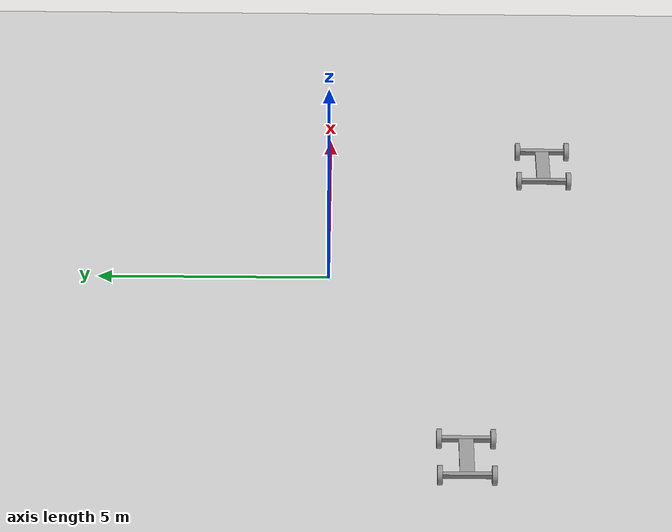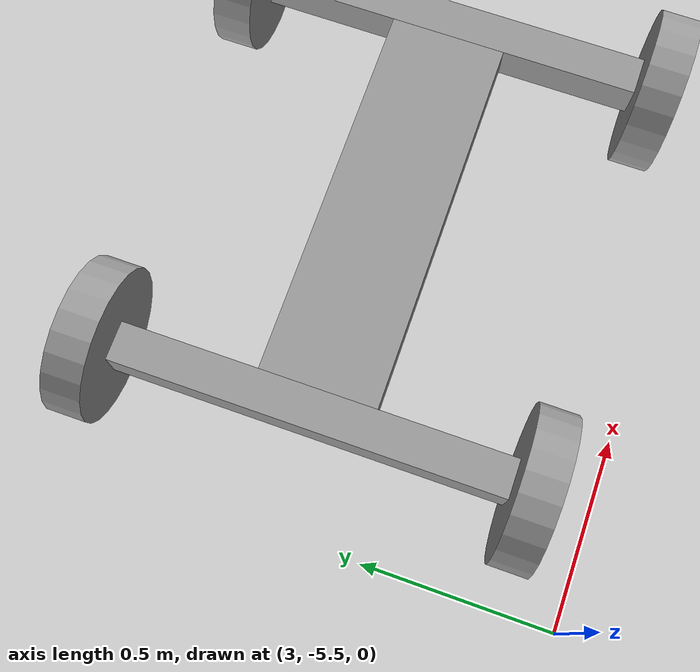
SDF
<sdf version="1.6">
 <world name="default">
  <model name="ground_plane">
   <static>1</static>
   <link name="link">
    <collision name="collision">
     <geometry><plane><normal>0 0 1</normal><size>100 100</size></plane></geometry>
     <surface>
      <contact><collide_bitmask>65535</collide_bitmask></contact>
      <friction><ode><mu>100</mu><mu2>50</mu2></ode></friction>
     </surface>
    </collision>
    <visual name="visual">
     <cast_shadows>0</cast_shadows>
     <geometry><plane><normal>0 0 1</normal><size>100 100</size></plane></geometry>
     <material>
      <script><uri>file://media/materials/scripts/gazebo.material</uri><name>Gazebo/Grey</name></script>
     </material>
    </visual>
   </link>
  </model>
  <model name="humanoid1_0">
   <link name="link_0">
    <inertial>
     <mass>1</mass>
     <inertia>
      <ixx>0.166667</ixx>
      <ixy>0</ixy>
      <ixz>0</ixz>
      <iyy>0.166667</iyy>
      <iyz>0</iyz>
      <izz>0.166667</izz>
     </inertia>
    </inertial>
    <pose>-0.027143 0 0 0 -0 0</pose>
    <visual name="visual">
     <geometry><box><size>1 0.3 0.1</size></box></geometry>
     <material>
      <lighting>1</lighting>
      <script><uri>file://media/materials/scripts/gazebo.material</uri><name>Gazebo/Grey</name></script>
      <shader type="pixel"><normal_map>__default__</normal_map></shader>
      <ambient>0.3 0.3 0.3 1</ambient>
      <diffuse>0.7 0.7 0.7 1</diffuse>
      <specular>0.01 0.01 0.01 1</specular>
      <emissive>0 0 0 1</emissive>
     </material>
    </visual>
    <collision name="collision">
     <geometry><box><size>1 0.3 0.1</size></box></geometry>
     <surface>
      <friction>
       <ode><mu>1</mu><mu2>1</mu2><fdir1>0 0 0</fdir1><slip1>0</slip1><slip2>0</slip2></ode>
       <torsional>
        <coefficient>1</coefficient>
        <patch_radius>0</patch_radius>
        <surface_radius>0</surface_radius>
        <use_patch_radius>1</use_patch_radius>
        <ode><slip>0</slip></ode>
       </torsional>
      </friction>
      <bounce><restitution_coefficient>0</restitution_coefficient><threshold>1e+06</threshold></bounce>
      <contact>
       <collide_without_contact>0</collide_without_contact>
       <collide_without_contact_bitmask>1</collide_without_contact_bitmask>
       <collide_bitmask>1</collide_bitmask>
       <ode>
        <soft_cfm>0</soft_cfm>
        <soft_erp>0.2</soft_erp>
        <kp>1e+13</kp>
        <kd>1</kd>
        <max_vel>0.01</max_vel>
        <min_depth>0</min_depth>
       </ode>
       <bullet>
        <split_impulse>1</split_impulse>
        <split_impulse_penetration_threshold>-0.01</split_impulse_penetration_threshold>
        <soft_cfm>0</soft_cfm>
        <soft_erp>0.2</soft_erp>
        <kp>1e+13</kp>
        <kd>1</kd>
       </bullet>
      </contact>
     </surface>
    </collision>
   </link>
   <link name="link_1_clone_clone">
    <inertial>
     <mass>1</mass>
     <inertia><ixx>0.145833</ixx><ixy>0</ixy><ixz>0</ixz><iyy>0.145833</iyy><iyz>0</iyz><izz>0.125</izz></inertia>
    </inertial>
    <pose>0.522857 -0.550019 0 1.5707 -0 0</pose>
    <visual name="visual">
     <geometry><cylinder><radius>0.2</radius><length>0.1</length></cylinder></geometry>
     <material>
      <lighting>1</lighting>
      <script><uri>file://media/materials/scripts/gazebo.material</uri><name>Gazebo/Grey</name></script>
      <shader type="pixel"><normal_map>__default__</normal_map></shader>
      <ambient>0.3 0.3 0.3 1</ambient>
      <diffuse>0.7 0.7 0.7 1</diffuse>
      <specular>0.01 0.01 0.01 1</specular>
      <emissive>0 0 0 1</emissive>
     </material>
    </visual>
    <collision name="collision">
     <geometry><cylinder><radius>0.2</radius><length>0.1</length></cylinder></geometry>
     <surface>
      <friction>
       <ode><mu>1</mu><mu2>1</mu2><fdir1>0 0 0</fdir1><slip1>0</slip1><slip2>0</slip2></ode>
       <torsional>
        <coefficient>1</coefficient>
        <patch_radius>0</patch_radius>
        <surface_radius>0</surface_radius>
        <use_patch_radius>1</use_patch_radius>
        <ode><slip>0</slip></ode>
       </torsional>
      </friction>
      <bounce><restitution_coefficient>0</restitution_coefficient><threshold>1e+06</threshold></bounce>
      <contact>
       <collide_without_contact>0</collide_without_contact>
       <collide_without_contact_bitmask>1</collide_without_contact_bitmask>
       <collide_bitmask>1</collide_bitmask>
       <ode>
        <soft_cfm>0</soft_cfm>
        <soft_erp>0.2</soft_erp>
        <kp>1e+13</kp>
        <kd>1</kd>
        <max_vel>0.01</max_vel>
        <min_depth>0</min_depth>
       </ode>
       <bullet>
        <split_impulse>1</split_impulse>
        <split_impulse_penetration_threshold>-0.01</split_impulse_penetration_threshold>
        <soft_cfm>0</soft_cfm>
        <soft_erp>0.2</soft_erp>
        <kp>1e+13</kp>
        <kd>1</kd>
       </bullet>
      </contact>
     </surface>
    </collision>
   </link>
   <link name="link_1_clone_clone_0">
    <inertial>
     <mass>1</mass>
     <inertia><ixx>0.145833</ixx><ixy>0</ixy><ixz>0</ixz><iyy>0.145833</iyy><iyz>0</iyz><izz>0.125</izz></inertia>
    </inertial>
    <pose>-0.577143 -0.550019 0 1.5707 -0 0</pose>
    <visual name="visual">
     <geometry><cylinder><radius>0.2</radius><length>0.1</length></cylinder></geometry>
     <material>
      <lighting>1</lighting>
      <script><uri>file://media/materials/scripts/gazebo.material</uri><name>Gazebo/Grey</name></script>
      <shader type="pixel"><normal_map>__default__</normal_map></shader>
      <ambient>0.3 0.3 0.3 1</ambient>
      <diffuse>0.7 0.7 0.7 1</diffuse>
      <specular>0.01 0.01 0.01 1</specular>
      <emissive>0 0 0 1</emissive>
     </material>
    </visual>
    <collision name="collision">
     <geometry><cylinder><radius>0.2</radius><length>0.1</length></cylinder></geometry>
     <surface>
      <friction>
       <ode><mu>1</mu><mu2>1</mu2><fdir1>0 0 0</fdir1><slip1>0</slip1><slip2>0</slip2></ode>
       <torsional>
        <coefficient>1</coefficient>
        <patch_radius>0</patch_radius>
        <surface_radius>0</surface_radius>
        <use_patch_radius>1</use_patch_radius>
        <ode><slip>0</slip></ode>
       </torsional>
      </friction>
      <bounce><restitution_coefficient>0</restitution_coefficient><threshold>1e+06</threshold></bounce>
      <contact>
       <collide_without_contact>0</collide_without_contact>
       <collide_without_contact_bitmask>1</collide_without_contact_bitmask>
       <collide_bitmask>1</collide_bitmask>
       <ode>
        <soft_cfm>0</soft_cfm>
        <soft_erp>0.2</soft_erp>
        <kp>1e+13</kp>
        <kd>1</kd>
        <max_vel>0.01</max_vel>
        <min_depth>0</min_depth>
       </ode>
       <bullet>
        <split_impulse>1</split_impulse>
        <split_impulse_penetration_threshold>-0.01</split_impulse_penetration_threshold>
        <soft_cfm>0</soft_cfm>
        <soft_erp>0.2</soft_erp>
        <kp>1e+13</kp>
        <kd>1</kd>
       </bullet>
      </contact>
     </surface>
    </collision>
   </link>
   <link name="link_1_clone_clone_0_clone">
    <inertial>
     <mass>1</mass>
     <inertia><ixx>0.145833</ixx><ixy>0</ixy><ixz>0</ixz><iyy>0.145833</iyy><iyz>0</iyz><izz>0.125</izz></inertia>
    </inertial>
    <pose>-0.577143 0.550019 0 1.5707 -0 0</pose>
    <visual name="visual">
     <geometry><cylinder><radius>0.2</radius><length>0.1</length></cylinder></geometry>
     <material>
      <lighting>1</lighting>
      <script><uri>file://media/materials/scripts/gazebo.material</uri><name>Gazebo/Grey</name></script>
      <shader type="pixel"><normal_map>__default__</normal_map></shader>
      <ambient>0.3 0.3 0.3 1</ambient>
      <diffuse>0.7 0.7 0.7 1</diffuse>
      <specular>0.01 0.01 0.01 1</specular>
      <emissive>0 0 0 1</emissive>
     </material>
    </visual>
    <collision name="collision">
     <geometry><cylinder><radius>0.2</radius><length>0.1</length></cylinder></geometry>
     <surface>
      <friction>
       <ode><mu>1</mu><mu2>1</mu2><fdir1>0 0 0</fdir1><slip1>0</slip1><slip2>0</slip2></ode>
       <torsional>
        <coefficient>1</coefficient>
        <patch_radius>0</patch_radius>
        <surface_radius>0</surface_radius>
        <use_patch_radius>1</use_patch_radius>
        <ode><slip>0</slip></ode>
       </torsional>
      </friction>
      <bounce><restitution_coefficient>0</restitution_coefficient><threshold>1e+06</threshold></bounce>
      <contact>
       <collide_without_contact>0</collide_without_contact>
       <collide_without_contact_bitmask>1</collide_without_contact_bitmask>
       <collide_bitmask>1</collide_bitmask>
       <ode>
        <soft_cfm>0</soft_cfm>
        <soft_erp>0.2</soft_erp>
        <kp>1e+13</kp>
        <kd>1</kd>
        <max_vel>0.01</max_vel>
        <min_depth>0</min_depth>
       </ode>
       <bullet>
        <split_impulse>1</split_impulse>
        <split_impulse_penetration_threshold>-0.01</split_impulse_penetration_threshold>
        <soft_cfm>0</soft_cfm>
        <soft_erp>0.2</soft_erp>
        <kp>1e+13</kp>
        <kd>1</kd>
       </bullet>
      </contact>
     </surface>
    </collision>
   </link>
   <link name="link_1_clone_clone_1">
    <inertial>
     <mass>1</mass>
     <inertia><ixx>0.145833</ixx><ixy>0</ixy><ixz>0</ixz><iyy>0.145833</iyy><iyz>0</iyz><izz>0.125</izz></inertia>
    </inertial>
    <pose>0.522857 0.550019 0 1.5707 -0 0</pose>
    <visual name="visual">
     <geometry><cylinder><radius>0.2</radius><length>0.1</length></cylinder></geometry>
     <material>
      <lighting>1</lighting>
      <script><uri>file://media/materials/scripts/gazebo.material</uri><name>Gazebo/Grey</name></script>
      <shader type="pixel"><normal_map>__default__</normal_map></shader>
      <ambient>0.3 0.3 0.3 1</ambient>
      <diffuse>0.7 0.7 0.7 1</diffuse>
      <specular>0.01 0.01 0.01 1</specular>
      <emissive>0 0 0 1</emissive>
     </material>
    </visual>
    <collision name="collision">
     <geometry><cylinder><radius>0.2</radius><length>0.1</length></cylinder></geometry>
     <surface>
      <friction>
       <ode><mu>1</mu><mu2>1</mu2><fdir1>0 0 0</fdir1><slip1>0</slip1><slip2>0</slip2></ode>
       <torsional>
        <coefficient>1</coefficient>
        <patch_radius>0</patch_radius>
        <surface_radius>0</surface_radius>
        <use_patch_radius>1</use_patch_radius>
        <ode><slip>0</slip></ode>
       </torsional>
      </friction>
      <bounce><restitution_coefficient>0</restitution_coefficient><threshold>1e+06</threshold></bounce>
      <contact>
       <collide_without_contact>0</collide_without_contact>
       <collide_without_contact_bitmask>1</collide_without_contact_bitmask>
       <collide_bitmask>1</collide_bitmask>
       <ode>
        <soft_cfm>0</soft_cfm>
        <soft_erp>0.2</soft_erp>
        <kp>1e+13</kp>
        <kd>1</kd>
        <max_vel>0.01</max_vel>
        <min_depth>0</min_depth>
       </ode>
       <bullet>
        <split_impulse>1</split_impulse>
        <split_impulse_penetration_threshold>-0.01</split_impulse_penetration_threshold>
        <soft_cfm>0</soft_cfm>
        <soft_erp>0.2</soft_erp>
        <kp>1e+13</kp>
        <kd>1</kd>
       </bullet>
      </contact>
     </surface>
    </collision>
   </link>
   <link name="link_3">
    <inertial>
     <mass>1</mass>
     <inertia>
      <ixx>0.166667</ixx>
      <ixy>0</ixy>
      <ixz>0</ixz>
      <iyy>0.166667</iyy>
      <iyz>0</iyz>
      <izz>0.166667</izz>
     </inertia>
    </inertial>
    <pose>-0.577143 0 0 0 -0 0</pose>
    <visual name="visual">
     <geometry><box><size>0.1 1 0.1</size></box></geometry>
     <material>
      <lighting>1</lighting>
      <script><uri>file://media/materials/scripts/gazebo.material</uri><name>Gazebo/Grey</name></script>
      <shader type="pixel"><normal_map>__default__</normal_map></shader>
      <ambient>0.3 0.3 0.3 1</ambient>
      <diffuse>0.7 0.7 0.7 1</diffuse>
      <specular>0.01 0.01 0.01 1</specular>
      <emissive>0 0 0 1</emissive>
     </material>
    </visual>
    <collision name="collision">
     <geometry><box><size>0.1 1 0.1</size></box></geometry>
     <surface>
      <friction>
       <ode><mu>1</mu><mu2>1</mu2><fdir1>0 0 0</fdir1><slip1>0</slip1><slip2>0</slip2></ode>
       <torsional>
        <coefficient>1</coefficient>
        <patch_radius>0</patch_radius>
        <surface_radius>0</surface_radius>
        <use_patch_radius>1</use_patch_radius>
        <ode><slip>0</slip></ode>
       </torsional>
      </friction>
      <bounce><restitution_coefficient>0</restitution_coefficient><threshold>1e+06</threshold></bounce>
      <contact>
       <collide_without_contact>0</collide_without_contact>
       <collide_without_contact_bitmask>1</collide_without_contact_bitmask>
       <collide_bitmask>1</collide_bitmask>
       <ode>
        <soft_cfm>0</soft_cfm>
        <soft_erp>0.2</soft_erp>
        <kp>1e+13</kp>
        <kd>1</kd>
        <max_vel>0.01</max_vel>
        <min_depth>0</min_depth>
       </ode>
       <bullet>
        <split_impulse>1</split_impulse>
        <split_impulse_penetration_threshold>-0.01</split_impulse_penetration_threshold>
        <soft_cfm>0</soft_cfm>
        <soft_erp>0.2</soft_erp>
        <kp>1e+13</kp>
        <kd>1</kd>
       </bullet>
      </contact>
     </surface>
    </collision>
   </link>
   <link name="link_3_clone">
    <inertial>
     <mass>1</mass>
     <inertia>
      <ixx>0.166667</ixx>
      <ixy>0</ixy>
      <ixz>0</ixz>
      <iyy>0.166667</iyy>
      <iyz>0</iyz>
      <izz>0.166667</izz>
     </inertia>
    </inertial>
    <pose>0.522857 0 0 0 -0 0</pose>
    <visual name="visual">
     <geometry><box><size>0.1 1 0.1</size></box></geometry>
     <material>
      <lighting>1</lighting>
      <script><uri>file://media/materials/scripts/gazebo.material</uri><name>Gazebo/Grey</name></script>
      <shader type="pixel"><normal_map>__default__</normal_map></shader>
      <ambient>0.3 0.3 0.3 1</ambient>
      <diffuse>0.7 0.7 0.7 1</diffuse>
      <specular>0.01 0.01 0.01 1</specular>
      <emissive>0 0 0 1</emissive>
     </material>
    </visual>
    <collision name="collision">
     <geometry><box><size>0.1 1 0.1</size></box></geometry>
     <surface>
      <friction>
       <ode><mu>1</mu><mu2>1</mu2><fdir1>0 0 0</fdir1><slip1>0</slip1><slip2>0</slip2></ode>
       <torsional>
        <coefficient>1</coefficient>
        <patch_radius>0</patch_radius>
        <surface_radius>0</surface_radius>
        <use_patch_radius>1</use_patch_radius>
        <ode><slip>0</slip></ode>
       </torsional>
      </friction>
      <bounce><restitution_coefficient>0</restitution_coefficient><threshold>1e+06</threshold></bounce>
      <contact>
       <collide_without_contact>0</collide_without_contact>
       <collide_without_contact_bitmask>1</collide_without_contact_bitmask>
       <collide_bitmask>1</collide_bitmask>
       <ode>
        <soft_cfm>0</soft_cfm>
        <soft_erp>0.2</soft_erp>
        <kp>1e+13</kp>
        <kd>1</kd>
        <max_vel>0.01</max_vel>
        <min_depth>0</min_depth>
       </ode>
       <bullet>
        <split_impulse>1</split_impulse>
        <split_impulse_penetration_threshold>-0.01</split_impulse_penetration_threshold>
        <soft_cfm>0</soft_cfm>
        <soft_erp>0.2</soft_erp>
        <kp>1e+13</kp>
        <kd>1</kd>
       </bullet>
      </contact>
     </surface>
    </collision>
   </link>
   <joint name="link_0_JOINT_6" type="fixed">
    <parent>link_0</parent>
    <child>link_3_clone</child>
    <physics>
     <ode><limit><cfm>0</cfm><erp>0.2</erp></limit><suspension><cfm>0</cfm><erp>0.2</erp></suspension></ode>
    </physics>
   </joint>
   <joint name="link_0_JOINT_7" type="fixed">
    <parent>link_0</parent>
    <child>link_3</child>
    <physics>
     <ode><limit><cfm>0</cfm><erp>0.2</erp></limit><suspension><cfm>0</cfm><erp>0.2</erp></suspension></ode>
    </physics>
   </joint>
   <joint name="link_3_JOINT_10" type="revolute">
    <parent>link_3</parent>
    <child>link_1_clone_clone_0</child>
    <axis>
     <xyz>1 0 0</xyz>
     <use_parent_model_frame>0</use_parent_model_frame>
     <limit>
      <lower>-1.79769e+308</lower>
      <upper>1.79769e+308</upper>
      <effort>-1</effort>
      <velocity>-1</velocity>
     </limit>
     <dynamics>
      <spring_reference>0</spring_reference>
      <spring_stiffness>0</spring_stiffness>
      <damping>0</damping>
     </dynamics>
    </axis>
    <physics>
     <ode><limit><cfm>0</cfm><erp>0.2</erp></limit><suspension><cfm>0</cfm><erp>0.2</erp></suspension></ode>
    </physics>
   </joint>
   <joint name="link_3_JOINT_9" type="revolute">
    <parent>link_3</parent>
    <child>link_1_clone_clone_0_clone</child>
    <axis>
     <xyz>1 0 0</xyz>
     <use_parent_model_frame>0</use_parent_model_frame>
     <limit>
      <lower>-1.79769e+308</lower>
      <upper>1.79769e+308</upper>
      <effort>-1</effort>
      <velocity>-1</velocity>
     </limit>
     <dynamics>
      <spring_reference>0</spring_reference>
      <spring_stiffness>0</spring_stiffness>
      <damping>0</damping>
     </dynamics>
    </axis>
    <physics>
     <ode><limit><cfm>0</cfm><erp>0.2</erp></limit><suspension><cfm>0</cfm><erp>0.2</erp></suspension></ode>
    </physics>
   </joint>
   <joint name="link_3_clone_JOINT_11" type="revolute">
    <parent>link_3_clone</parent>
    <child>link_1_clone_clone</child>
    <axis>
     <xyz>1 0 0</xyz>
     <use_parent_model_frame>0</use_parent_model_frame>
     <limit>
      <lower>-1.79769e+308</lower>
      <upper>1.79769e+308</upper>
      <effort>-1</effort>
      <velocity>-1</velocity>
     </limit>
     <dynamics>
      <spring_reference>0</spring_reference>
      <spring_stiffness>0</spring_stiffness>
      <damping>0</damping>
     </dynamics>
    </axis>
    <physics>
     <ode><limit><cfm>0</cfm><erp>0.2</erp></limit><suspension><cfm>0</cfm><erp>0.2</erp></suspension></ode>
    </physics>
   </joint>
   <joint name="link_3_clone_JOINT_12" type="revolute">
    <parent>link_3_clone</parent>
    <child>link_1_clone_clone_1</child>
    <axis>
     <xyz>1 0 0</xyz>
     <use_parent_model_frame>0</use_parent_model_frame>
     <limit>
      <lower>-1.79769e+308</lower>
      <upper>1.79769e+308</upper>
      <effort>-1</effort>
      <velocity>-1</velocity>
     </limit>
     <dynamics>
      <spring_reference>0</spring_reference>
      <spring_stiffness>0</spring_stiffness>
      <damping>0</damping>
     </dynamics>
    </axis>
    <physics>
     <ode><limit><cfm>0</cfm><erp>0.2</erp></limit><suspension><cfm>0</cfm><erp>0.2</erp></suspension></ode>
    </physics>
   </joint>
   <static>0</static>
   <pose>-5.96667 -2.85066 0.199999 -3e-06 -0 0.001768</pose>
  </model>
  <model name="humanoid1_1">
   <link name="link_0">
    <inertial>
     <mass>1</mass>
     <inertia>
      <ixx>0.166667</ixx>
      <ixy>0</ixy>
      <ixz>0</ixz>
      <iyy>0.166667</iyy>
      <iyz>0</iyz>
      <izz>0.166667</izz>
     </inertia>
    </inertial>
    <pose>-0.027143 0 0 0 -0 0</pose>
    <visual name="visual">
     <geometry><box><size>1 0.3 0.1</size></box></geometry>
     <material>
      <lighting>1</lighting>
      <script><uri>file://media/materials/scripts/gazebo.material</uri><name>Gazebo/Grey</name></script>
      <shader type="pixel"><normal_map>__default__</normal_map></shader>
      <ambient>0.3 0.3 0.3 1</ambient>
      <diffuse>0.7 0.7 0.7 1</diffuse>
      <specular>0.01 0.01 0.01 1</specular>
      <emissive>0 0 0 1</emissive>
     </material>
    </visual>
    <collision name="collision">
     <geometry><box><size>1 0.3 0.1</size></box></geometry>
     <surface>
      <friction>
       <ode><mu>1</mu><mu2>1</mu2><fdir1>0 0 0</fdir1><slip1>0</slip1><slip2>0</slip2></ode>
       <torsional>
        <coefficient>1</coefficient>
        <patch_radius>0</patch_radius>
        <surface_radius>0</surface_radius>
        <use_patch_radius>1</use_patch_radius>
        <ode><slip>0</slip></ode>
       </torsional>
      </friction>
      <bounce><restitution_coefficient>0</restitution_coefficient><threshold>1e+06</threshold></bounce>
      <contact>
       <collide_without_contact>0</collide_without_contact>
       <collide_without_contact_bitmask>1</collide_without_contact_bitmask>
       <collide_bitmask>1</collide_bitmask>
       <ode>
        <soft_cfm>0</soft_cfm>
        <soft_erp>0.2</soft_erp>
        <kp>1e+13</kp>
        <kd>1</kd>
        <max_vel>0.01</max_vel>
        <min_depth>0</min_depth>
       </ode>
       <bullet>
        <split_impulse>1</split_impulse>
        <split_impulse_penetration_threshold>-0.01</split_impulse_penetration_threshold>
        <soft_cfm>0</soft_cfm>
        <soft_erp>0.2</soft_erp>
        <kp>1e+13</kp>
        <kd>1</kd>
       </bullet>
      </contact>
     </surface>
    </collision>
   </link>
   <link name="link_1_clone_clone">
    <inertial>
     <mass>1</mass>
     <inertia><ixx>0.145833</ixx><ixy>0</ixy><ixz>0</ixz><iyy>0.145833</iyy><iyz>0</iyz><izz>0.125</izz></inertia>
    </inertial>
    <pose>0.522857 -0.550019 0 1.5707 -0 0</pose>
    <visual name="visual">
     <geometry><cylinder><radius>0.2</radius><length>0.1</length></cylinder></geometry>
     <material>
      <lighting>1</lighting>
      <script><uri>file://media/materials/scripts/gazebo.material</uri><name>Gazebo/Grey</name></script>
      <shader type="pixel"><normal_map>__default__</normal_map></shader>
      <ambient>0.3 0.3 0.3 1</ambient>
      <diffuse>0.7 0.7 0.7 1</diffuse>
      <specular>0.01 0.01 0.01 1</specular>
      <emissive>0 0 0 1</emissive>
     </material>
    </visual>
    <collision name="collision">
     <geometry><cylinder><radius>0.2</radius><length>0.1</length></cylinder></geometry>
     <surface>
      <friction>
       <ode><mu>1</mu><mu2>1</mu2><fdir1>0 0 0</fdir1><slip1>0</slip1><slip2>0</slip2></ode>
       <torsional>
        <coefficient>1</coefficient>
        <patch_radius>0</patch_radius>
        <surface_radius>0</surface_radius>
        <use_patch_radius>1</use_patch_radius>
        <ode><slip>0</slip></ode>
       </torsional>
      </friction>
      <bounce><restitution_coefficient>0</restitution_coefficient><threshold>1e+06</threshold></bounce>
      <contact>
       <collide_without_contact>0</collide_without_contact>
       <collide_without_contact_bitmask>1</collide_without_contact_bitmask>
       <collide_bitmask>1</collide_bitmask>
       <ode>
        <soft_cfm>0</soft_cfm>
        <soft_erp>0.2</soft_erp>
        <kp>1e+13</kp>
        <kd>1</kd>
        <max_vel>0.01</max_vel>
        <min_depth>0</min_depth>
       </ode>
       <bullet>
        <split_impulse>1</split_impulse>
        <split_impulse_penetration_threshold>-0.01</split_impulse_penetration_threshold>
        <soft_cfm>0</soft_cfm>
        <soft_erp>0.2</soft_erp>
        <kp>1e+13</kp>
        <kd>1</kd>
       </bullet>
      </contact>
     </surface>
    </collision>
   </link>
   <link name="link_1_clone_clone_0">
    <inertial>
     <mass>1</mass>
     <inertia><ixx>0.145833</ixx><ixy>0</ixy><ixz>0</ixz><iyy>0.145833</iyy><iyz>0</iyz><izz>0.125</izz></inertia>
    </inertial>
    <pose>-0.577143 -0.550019 0 1.5707 -0 0</pose>
    <visual name="visual">
     <geometry><cylinder><radius>0.2</radius><length>0.1</length></cylinder></geometry>
     <material>
      <lighting>1</lighting>
      <script><uri>file://media/materials/scripts/gazebo.material</uri><name>Gazebo/Grey</name></script>
      <shader type="pixel"><normal_map>__default__</normal_map></shader>
      <ambient>0.3 0.3 0.3 1</ambient>
      <diffuse>0.7 0.7 0.7 1</diffuse>
      <specular>0.01 0.01 0.01 1</specular>
      <emissive>0 0 0 1</emissive>
     </material>
    </visual>
    <collision name="collision">
     <geometry><cylinder><radius>0.2</radius><length>0.1</length></cylinder></geometry>
     <surface>
      <friction>
       <ode><mu>1</mu><mu2>1</mu2><fdir1>0 0 0</fdir1><slip1>0</slip1><slip2>0</slip2></ode>
       <torsional>
        <coefficient>1</coefficient>
        <patch_radius>0</patch_radius>
        <surface_radius>0</surface_radius>
        <use_patch_radius>1</use_patch_radius>
        <ode><slip>0</slip></ode>
       </torsional>
      </friction>
      <bounce><restitution_coefficient>0</restitution_coefficient><threshold>1e+06</threshold></bounce>
      <contact>
       <collide_without_contact>0</collide_without_contact>
       <collide_without_contact_bitmask>1</collide_without_contact_bitmask>
       <collide_bitmask>1</collide_bitmask>
       <ode>
        <soft_cfm>0</soft_cfm>
        <soft_erp>0.2</soft_erp>
        <kp>1e+13</kp>
        <kd>1</kd>
        <max_vel>0.01</max_vel>
        <min_depth>0</min_depth>
       </ode>
       <bullet>
        <split_impulse>1</split_impulse>
        <split_impulse_penetration_threshold>-0.01</split_impulse_penetration_threshold>
        <soft_cfm>0</soft_cfm>
        <soft_erp>0.2</soft_erp>
        <kp>1e+13</kp>
        <kd>1</kd>
       </bullet>
      </contact>
     </surface>
    </collision>
   </link>
   <link name="link_1_clone_clone_0_clone">
    <inertial>
     <mass>1</mass>
     <inertia><ixx>0.145833</ixx><ixy>0</ixy><ixz>0</ixz><iyy>0.145833</iyy><iyz>0</iyz><izz>0.125</izz></inertia>
    </inertial>
    <pose>-0.577143 0.550019 0 1.5707 -0 0</pose>
    <visual name="visual">
     <geometry><cylinder><radius>0.2</radius><length>0.1</length></cylinder></geometry>
     <material>
      <lighting>1</lighting>
      <script><uri>file://media/materials/scripts/gazebo.material</uri><name>Gazebo/Grey</name></script>
      <shader type="pixel"><normal_map>__default__</normal_map></shader>
      <ambient>0.3 0.3 0.3 1</ambient>
      <diffuse>0.7 0.7 0.7 1</diffuse>
      <specular>0.01 0.01 0.01 1</specular>
      <emissive>0 0 0 1</emissive>
     </material>
    </visual>
    <collision name="collision">
     <geometry><cylinder><radius>0.2</radius><length>0.1</length></cylinder></geometry>
     <surface>
      <friction>
       <ode><mu>1</mu><mu2>1</mu2><fdir1>0 0 0</fdir1><slip1>0</slip1><slip2>0</slip2></ode>
       <torsional>
        <coefficient>1</coefficient>
        <patch_radius>0</patch_radius>
        <surface_radius>0</surface_radius>
        <use_patch_radius>1</use_patch_radius>
        <ode><slip>0</slip></ode>
       </torsional>
      </friction>
      <bounce><restitution_coefficient>0</restitution_coefficient><threshold>1e+06</threshold></bounce>
      <contact>
       <collide_without_contact>0</collide_without_contact>
       <collide_without_contact_bitmask>1</collide_without_contact_bitmask>
       <collide_bitmask>1</collide_bitmask>
       <ode>
        <soft_cfm>0</soft_cfm>
        <soft_erp>0.2</soft_erp>
        <kp>1e+13</kp>
        <kd>1</kd>
        <max_vel>0.01</max_vel>
        <min_depth>0</min_depth>
       </ode>
       <bullet>
        <split_impulse>1</split_impulse>
        <split_impulse_penetration_threshold>-0.01</split_impulse_penetration_threshold>
        <soft_cfm>0</soft_cfm>
        <soft_erp>0.2</soft_erp>
        <kp>1e+13</kp>
        <kd>1</kd>
       </bullet>
      </contact>
     </surface>
    </collision>
   </link>
   <link name="link_1_clone_clone_1">
    <inertial>
     <mass>1</mass>
     <inertia><ixx>0.145833</ixx><ixy>0</ixy><ixz>0</ixz><iyy>0.145833</iyy><iyz>0</iyz><izz>0.125</izz></inertia>
    </inertial>
    <pose>0.522857 0.550019 0 1.5707 -0 0</pose>
    <visual name="visual">
     <geometry><cylinder><radius>0.2</radius><length>0.1</length></cylinder></geometry>
     <material>
      <lighting>1</lighting>
      <script><uri>file://media/materials/scripts/gazebo.material</uri><name>Gazebo/Grey</name></script>
      <shader type="pixel"><normal_map>__default__</normal_map></shader>
      <ambient>0.3 0.3 0.3 1</ambient>
      <diffuse>0.7 0.7 0.7 1</diffuse>
      <specular>0.01 0.01 0.01 1</specular>
      <emissive>0 0 0 1</emissive>
     </material>
    </visual>
    <collision name="collision">
     <geometry><cylinder><radius>0.2</radius><length>0.1</length></cylinder></geometry>
     <surface>
      <friction>
       <ode><mu>1</mu><mu2>1</mu2><fdir1>0 0 0</fdir1><slip1>0</slip1><slip2>0</slip2></ode>
       <torsional>
        <coefficient>1</coefficient>
        <patch_radius>0</patch_radius>
        <surface_radius>0</surface_radius>
        <use_patch_radius>1</use_patch_radius>
        <ode><slip>0</slip></ode>
       </torsional>
      </friction>
      <bounce><restitution_coefficient>0</restitution_coefficient><threshold>1e+06</threshold></bounce>
      <contact>
       <collide_without_contact>0</collide_without_contact>
       <collide_without_contact_bitmask>1</collide_without_contact_bitmask>
       <collide_bitmask>1</collide_bitmask>
       <ode>
        <soft_cfm>0</soft_cfm>
        <soft_erp>0.2</soft_erp>
        <kp>1e+13</kp>
        <kd>1</kd>
        <max_vel>0.01</max_vel>
        <min_depth>0</min_depth>
       </ode>
       <bullet>
        <split_impulse>1</split_impulse>
        <split_impulse_penetration_threshold>-0.01</split_impulse_penetration_threshold>
        <soft_cfm>0</soft_cfm>
        <soft_erp>0.2</soft_erp>
        <kp>1e+13</kp>
        <kd>1</kd>
       </bullet>
      </contact>
     </surface>
    </collision>
   </link>
   <link name="link_3">
    <inertial>
     <mass>1</mass>
     <inertia>
      <ixx>0.166667</ixx>
      <ixy>0</ixy>
      <ixz>0</ixz>
      <iyy>0.166667</iyy>
      <iyz>0</iyz>
      <izz>0.166667</izz>
     </inertia>
    </inertial>
    <pose>-0.577143 0 0 0 -0 0</pose>
    <visual name="visual">
     <geometry><box><size>0.1 1 0.1</size></box></geometry>
     <material>
      <lighting>1</lighting>
      <script><uri>file://media/materials/scripts/gazebo.material</uri><name>Gazebo/Grey</name></script>
      <shader type="pixel"><normal_map>__default__</normal_map></shader>
      <ambient>0.3 0.3 0.3 1</ambient>
      <diffuse>0.7 0.7 0.7 1</diffuse>
      <specular>0.01 0.01 0.01 1</specular>
      <emissive>0 0 0 1</emissive>
     </material>
    </visual>
    <collision name="collision">
     <geometry><box><size>0.1 1 0.1</size></box></geometry>
     <surface>
      <friction>
       <ode><mu>1</mu><mu2>1</mu2><fdir1>0 0 0</fdir1><slip1>0</slip1><slip2>0</slip2></ode>
       <torsional>
        <coefficient>1</coefficient>
        <patch_radius>0</patch_radius>
        <surface_radius>0</surface_radius>
        <use_patch_radius>1</use_patch_radius>
        <ode><slip>0</slip></ode>
       </torsional>
      </friction>
      <bounce><restitution_coefficient>0</restitution_coefficient><threshold>1e+06</threshold></bounce>
      <contact>
       <collide_without_contact>0</collide_without_contact>
       <collide_without_contact_bitmask>1</collide_without_contact_bitmask>
       <collide_bitmask>1</collide_bitmask>
       <ode>
        <soft_cfm>0</soft_cfm>
        <soft_erp>0.2</soft_erp>
        <kp>1e+13</kp>
        <kd>1</kd>
        <max_vel>0.01</max_vel>
        <min_depth>0</min_depth>
       </ode>
       <bullet>
        <split_impulse>1</split_impulse>
        <split_impulse_penetration_threshold>-0.01</split_impulse_penetration_threshold>
        <soft_cfm>0</soft_cfm>
        <soft_erp>0.2</soft_erp>
        <kp>1e+13</kp>
        <kd>1</kd>
       </bullet>
      </contact>
     </surface>
    </collision>
   </link>
   <link name="link_3_clone">
    <inertial>
     <mass>1</mass>
     <inertia>
      <ixx>0.166667</ixx>
      <ixy>0</ixy>
      <ixz>0</ixz>
      <iyy>0.166667</iyy>
      <iyz>0</iyz>
      <izz>0.166667</izz>
     </inertia>
    </inertial>
    <pose>0.522857 0 0 0 -0 0</pose>
    <visual name="visual">
     <geometry><box><size>0.1 1 0.1</size></box></geometry>
     <material>
      <lighting>1</lighting>
      <script><uri>file://media/materials/scripts/gazebo.material</uri><name>Gazebo/Grey</name></script>
      <shader type="pixel"><normal_map>__default__</normal_map></shader>
      <ambient>0.3 0.3 0.3 1</ambient>
      <diffuse>0.7 0.7 0.7 1</diffuse>
      <specular>0.01 0.01 0.01 1</specular>
      <emissive>0 0 0 1</emissive>
     </material>
    </visual>
    <collision name="collision">
     <geometry><box><size>0.1 1 0.1</size></box></geometry>
     <surface>
      <friction>
       <ode><mu>1</mu><mu2>1</mu2><fdir1>0 0 0</fdir1><slip1>0</slip1><slip2>0</slip2></ode>
       <torsional>
        <coefficient>1</coefficient>
        <patch_radius>0</patch_radius>
        <surface_radius>0</surface_radius>
        <use_patch_radius>1</use_patch_radius>
        <ode><slip>0</slip></ode>
       </torsional>
      </friction>
      <bounce><restitution_coefficient>0</restitution_coefficient><threshold>1e+06</threshold></bounce>
      <contact>
       <collide_without_contact>0</collide_without_contact>
       <collide_without_contact_bitmask>1</collide_without_contact_bitmask>
       <collide_bitmask>1</collide_bitmask>
       <ode>
        <soft_cfm>0</soft_cfm>
        <soft_erp>0.2</soft_erp>
        <kp>1e+13</kp>
        <kd>1</kd>
        <max_vel>0.01</max_vel>
        <min_depth>0</min_depth>
       </ode>
       <bullet>
        <split_impulse>1</split_impulse>
        <split_impulse_penetration_threshold>-0.01</split_impulse_penetration_threshold>
        <soft_cfm>0</soft_cfm>
        <soft_erp>0.2</soft_erp>
        <kp>1e+13</kp>
        <kd>1</kd>
       </bullet>
      </contact>
     </surface>
    </collision>
   </link>
   <joint name="link_0_JOINT_6" type="fixed">
    <parent>link_0</parent>
    <child>link_3_clone</child>
    <physics>
     <ode><limit><cfm>0</cfm><erp>0.2</erp></limit><suspension><cfm>0</cfm><erp>0.2</erp></suspension></ode>
    </physics>
   </joint>
   <joint name="link_0_JOINT_7" type="fixed">
    <parent>link_0</parent>
    <child>link_3</child>
    <physics>
     <ode><limit><cfm>0</cfm><erp>0.2</erp></limit><suspension><cfm>0</cfm><erp>0.2</erp></suspension></ode>
    </physics>
   </joint>
   <joint name="link_3_JOINT_10" type="revolute">
    <parent>link_3</parent>
    <child>link_1_clone_clone_0</child>
    <axis>
     <xyz>1 0 0</xyz>
     <use_parent_model_frame>0</use_parent_model_frame>
     <limit>
      <lower>-1.79769e+308</lower>
      <upper>1.79769e+308</upper>
      <effort>-1</effort>
      <velocity>-1</velocity>
     </limit>
     <dynamics>
      <spring_reference>0</spring_reference>
      <spring_stiffness>0</spring_stiffness>
      <damping>0</damping>
     </dynamics>
    </axis>
    <physics>
     <ode><limit><cfm>0</cfm><erp>0.2</erp></limit><suspension><cfm>0</cfm><erp>0.2</erp></suspension></ode>
    </physics>
   </joint>
   <joint name="link_3_JOINT_9" type="revolute">
    <parent>link_3</parent>
    <child>link_1_clone_clone_0_clone</child>
    <axis>
     <xyz>1 0 0</xyz>
     <use_parent_model_frame>0</use_parent_model_frame>
     <limit>
      <lower>-1.79769e+308</lower>
      <upper>1.79769e+308</upper>
      <effort>-1</effort>
      <velocity>-1</velocity>
     </limit>
     <dynamics>
      <spring_reference>0</spring_reference>
      <spring_stiffness>0</spring_stiffness>
      <damping>0</damping>
     </dynamics>
    </axis>
    <physics>
     <ode><limit><cfm>0</cfm><erp>0.2</erp></limit><suspension><cfm>0</cfm><erp>0.2</erp></suspension></ode>
    </physics>
   </joint>
   <joint name="link_3_clone_JOINT_11" type="revolute">
    <parent>link_3_clone</parent>
    <child>link_1_clone_clone</child>
    <axis>
     <xyz>1 0 0</xyz>
     <use_parent_model_frame>0</use_parent_model_frame>
     <limit>
      <lower>-1.79769e+308</lower>
      <upper>1.79769e+308</upper>
      <effort>-1</effort>
      <velocity>-1</velocity>
     </limit>
     <dynamics>
      <spring_reference>0</spring_reference>
      <spring_stiffness>0</spring_stiffness>
      <damping>0</damping>
     </dynamics>
    </axis>
    <physics>
     <ode><limit><cfm>0</cfm><erp>0.2</erp></limit><suspension><cfm>0</cfm><erp>0.2</erp></suspension></ode>
    </physics>
   </joint>
   <joint name="link_3_clone_JOINT_12" type="revolute">
    <parent>link_3_clone</parent>
    <child>link_1_clone_clone_1</child>
    <axis>
     <xyz>1 0 0</xyz>
     <use_parent_model_frame>0</use_parent_model_frame>
     <limit>
      <lower>-1.79769e+308</lower>
      <upper>1.79769e+308</upper>
      <effort>-1</effort>
      <velocity>-1</velocity>
     </limit>
     <dynamics>
      <spring_reference>0</spring_reference>
      <spring_stiffness>0</spring_stiffness>
      <damping>0</damping>
     </dynamics>
    </axis>
    <physics>
     <ode><limit><cfm>0</cfm><erp>0.2</erp></limit><suspension><cfm>0</cfm><erp>0.2</erp></suspension></ode>
    </physics>
   </joint>
   <static>0</static>
   <pose>3.85852 -4.7751 0.199997 5e-06 -0 0.001764</pose>
  </model>
 </world>
</sdf>
